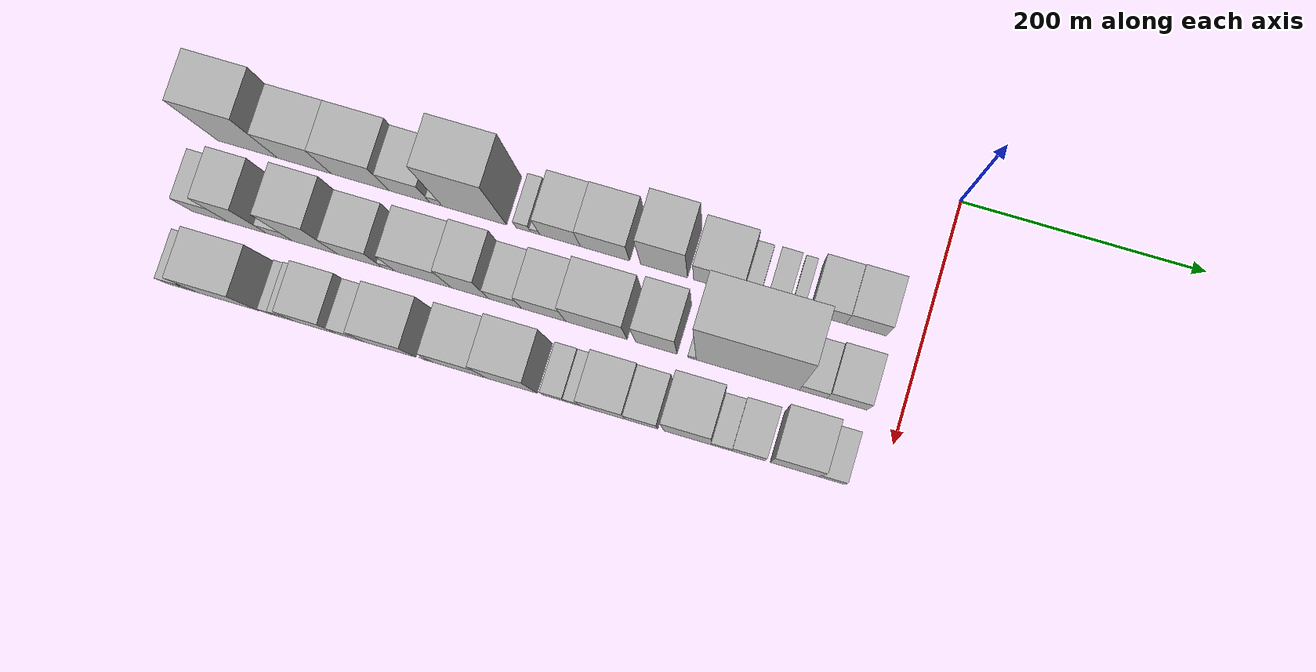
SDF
<sdf version="1.6">
 <world name="default">
  <model name="building_1">
   <static>1</static>
   <pose>100.0000 -554.9197 0 0.000000 0.000000 0.000000</pose>
   <link name="link">
    <pose>0 0 64.50 0 0 0</pose>
    <collision name="collision"><geometry><box><size>40.0000 50.1606 129.0000</size></box></geometry></collision>
    <visual name="visual">
     <cast_shadows>0</cast_shadows>
     <geometry><box><size>40.0000 50.1606 129.0000</size></box></geometry>
     <material>
      <script>
       <uri>model://HANNAS_wall/materials/scripts</uri>
       <uri>model://HANNAS_wall/materials/textures</uri>
       <name>vrc/HANNAS_wall</name>
      </script>
     </material>
    </visual>
   </link>
  </model>
  <model name="building_2">
   <static>1</static>
   <pose>100.0000 -507.3606 0 0.000000 0.000000 0.000000</pose>
   <link name="link">
    <pose>0 0 42.00 0 0 0</pose>
    <collision name="collision"><geometry><box><size>40.0000 44.9576 84.0000</size></box></geometry></collision>
    <visual name="visual">
     <cast_shadows>0</cast_shadows>
     <geometry><box><size>40.0000 44.9576 84.0000</size></box></geometry>
     <material>
      <script>
       <uri>model://HANNAS_wall/materials/scripts</uri>
       <uri>model://HANNAS_wall/materials/textures</uri>
       <name>vrc/HANNAS_wall</name>
      </script>
     </material>
    </visual>
   </link>
  </model>
  <model name="building_3">
   <static>1</static>
   <pose>100.0000 -460.6821 0 0.000000 0.000000 0.000000</pose>
   <link name="link">
    <pose>0 0 42.00 0 0 0</pose>
    <collision name="collision"><geometry><box><size>40.0000 48.3995 84.0000</size></box></geometry></collision>
    <visual name="visual">
     <cast_shadows>0</cast_shadows>
     <geometry><box><size>40.0000 48.3995 84.0000</size></box></geometry>
     <material>
      <script>
       <uri>model://HANNAS_wall/materials/scripts</uri>
       <uri>model://HANNAS_wall/materials/textures</uri>
       <name>vrc/HANNAS_wall</name>
      </script>
     </material>
    </visual>
   </link>
  </model>
  <model name="building_4">
   <static>1</static>
   <pose>100.0000 -419.5346 0 0.000000 0.000000 0.000000</pose>
   <link name="link">
    <pose>0 0 31.50 0 0 0</pose>
    <collision name="collision"><geometry><box><size>40.0000 33.8955 63.0000</size></box></geometry></collision>
    <visual name="visual">
     <cast_shadows>0</cast_shadows>
     <geometry><box><size>40.0000 33.8955 63.0000</size></box></geometry>
     <material>
      <script>
       <uri>model://HANNAS_wall/materials/scripts</uri>
       <uri>model://HANNAS_wall/materials/textures</uri>
       <name>vrc/HANNAS_wall</name>
      </script>
     </material>
    </visual>
   </link>
  </model>
  <model name="building_5">
   <static>1</static>
   <pose>100.0000 -397.4745 0 0.000000 0.000000 0.000000</pose>
   <link name="link">
    <pose>0 0 12.00 0 0 0</pose>
    <collision name="collision"><geometry><box><size>40.0000 10.2246 24.0000</size></box></geometry></collision>
    <visual name="visual">
     <cast_shadows>0</cast_shadows>
     <geometry><box><size>40.0000 10.2246 24.0000</size></box></geometry>
     <material>
      <script>
       <uri>model://HANNAS_wall/materials/scripts</uri>
       <uri>model://HANNAS_wall/materials/textures</uri>
       <name>vrc/HANNAS_wall</name>
      </script>
     </material>
    </visual>
   </link>
  </model>
  <model name="building_6">
   <static>1</static>
   <pose>100.0000 -365.7914 0 0.000000 0.000000 0.000000</pose>
   <link name="link">
    <pose>0 0 75.00 0 0 0</pose>
    <collision name="collision"><geometry><box><size>40.0000 53.1416 150.0000</size></box></geometry></collision>
    <visual name="visual">
     <cast_shadows>0</cast_shadows>
     <geometry><box><size>40.0000 53.1416 150.0000</size></box></geometry>
     <material>
      <script>
       <uri>model://HANNAS_wall/materials/scripts</uri>
       <uri>model://HANNAS_wall/materials/textures</uri>
       <name>vrc/HANNAS_wall</name>
      </script>
     </material>
    </visual>
   </link>
  </model>
  <model name="building_7">
   <static>1</static>
   <pose>100.0000 -325.1883 0 0.000000 0.000000 0.000000</pose>
   <link name="link">
    <pose>0 0 13.50 0 0 0</pose>
    <collision name="collision"><geometry><box><size>40.0000 12.0646 27.0000</size></box></geometry></collision>
    <visual name="visual">
     <cast_shadows>0</cast_shadows>
     <geometry><box><size>40.0000 12.0646 27.0000</size></box></geometry>
     <material>
      <script>
       <uri>model://HANNAS_wall/materials/scripts</uri>
       <uri>model://HANNAS_wall/materials/textures</uri>
       <name>vrc/HANNAS_wall</name>
      </script>
     </material>
    </visual>
   </link>
  </model>
  <model name="building_8">
   <static>1</static>
   <pose>100.0000 -315.4075 0 0.000000 0.000000 0.000000</pose>
   <link name="link">
    <pose>0 0 7.50 0 0 0</pose>
    <collision name="collision"><geometry><box><size>40.0000 7.4971 15.0000</size></box></geometry></collision>
    <visual name="visual">
     <cast_shadows>0</cast_shadows>
     <geometry><box><size>40.0000 7.4971 15.0000</size></box></geometry>
     <material>
      <script>
       <uri>model://HANNAS_wall/materials/scripts</uri>
       <uri>model://HANNAS_wall/materials/textures</uri>
       <name>vrc/HANNAS_wall</name>
      </script>
     </material>
    </visual>
   </link>
  </model>
  <model name="building_9">
   <static>1</static>
   <pose>100.0000 -294.9238 0 0.000000 0.000000 0.000000</pose>
   <link name="link">
    <pose>0 0 33.00 0 0 0</pose>
    <collision name="collision"><geometry><box><size>40.0000 33.4705 66.0000</size></box></geometry></collision>
    <visual name="visual">
     <cast_shadows>0</cast_shadows>
     <geometry><box><size>40.0000 33.4705 66.0000</size></box></geometry>
     <material>
      <script>
       <uri>model://HANNAS_wall/materials/scripts</uri>
       <uri>model://HANNAS_wall/materials/textures</uri>
       <name>vrc/HANNAS_wall</name>
      </script>
     </material>
    </visual>
   </link>
  </model>
  <model name="building_10">
   <static>1</static>
   <pose>100.0000 -257.9560 0 0.000000 0.000000 0.000000</pose>
   <link name="link">
    <pose>0 0 34.50 0 0 0</pose>
    <collision name="collision"><geometry><box><size>40.0000 40.4650 69.0000</size></box></geometry></collision>
    <visual name="visual">
     <cast_shadows>0</cast_shadows>
     <geometry><box><size>40.0000 40.4650 69.0000</size></box></geometry>
     <material>
      <script>
       <uri>model://HANNAS_wall/materials/scripts</uri>
       <uri>model://HANNAS_wall/materials/textures</uri>
       <name>vrc/HANNAS_wall</name>
      </script>
     </material>
    </visual>
   </link>
  </model>
  <model name="building_11">
   <static>1</static>
   <pose>100.0000 -209.4737 0 0.000000 0.000000 0.000000</pose>
   <link name="link">
    <pose>0 0 57.00 0 0 0</pose>
    <collision name="collision"><geometry><box><size>40.0000 38.4995 114.0000</size></box></geometry></collision>
    <visual name="visual">
     <cast_shadows>0</cast_shadows>
     <geometry><box><size>40.0000 38.4995 114.0000</size></box></geometry>
     <material>
      <script>
       <uri>model://HANNAS_wall/materials/scripts</uri>
       <uri>model://HANNAS_wall/materials/textures</uri>
       <name>vrc/HANNAS_wall</name>
      </script>
     </material>
    </visual>
   </link>
  </model>
  <model name="building_12">
   <static>1</static>
   <pose>100.0000 -164.6965 0 0.000000 0.000000 0.000000</pose>
   <link name="link">
    <pose>0 0 37.50 0 0 0</pose>
    <collision name="collision"><geometry><box><size>40.0000 41.0549 75.0000</size></box></geometry></collision>
    <visual name="visual">
     <cast_shadows>0</cast_shadows>
     <geometry><box><size>40.0000 41.0549 75.0000</size></box></geometry>
     <material>
      <script>
       <uri>model://HANNAS_wall/materials/scripts</uri>
       <uri>model://HANNAS_wall/materials/textures</uri>
       <name>vrc/HANNAS_wall</name>
      </script>
     </material>
    </visual>
   </link>
  </model>
  <model name="building_13">
   <static>1</static>
   <pose>100.0000 -137.7292 0 0.000000 0.000000 0.000000</pose>
   <link name="link">
    <pose>0 0 13.50 0 0 0</pose>
    <collision name="collision"><geometry><box><size>40.0000 12.8798 27.0000</size></box></geometry></collision>
    <visual name="visual">
     <cast_shadows>0</cast_shadows>
     <geometry><box><size>40.0000 12.8798 27.0000</size></box></geometry>
     <material>
      <script>
       <uri>model://HANNAS_wall/materials/scripts</uri>
       <uri>model://HANNAS_wall/materials/textures</uri>
       <name>vrc/HANNAS_wall</name>
      </script>
     </material>
    </visual>
   </link>
  </model>
  <model name="building_14">
   <static>1</static>
   <pose>100.0000 -116.9414 0 0.000000 0.000000 0.000000</pose>
   <link name="link">
    <pose>0 0 15.00 0 0 0</pose>
    <collision name="collision"><geometry><box><size>40.0000 16.6959 30.0000</size></box></geometry></collision>
    <visual name="visual">
     <cast_shadows>0</cast_shadows>
     <geometry><box><size>40.0000 16.6959 30.0000</size></box></geometry>
     <material>
      <script>
       <uri>model://HANNAS_wall/materials/scripts</uri>
       <uri>model://HANNAS_wall/materials/textures</uri>
       <name>vrc/HANNAS_wall</name>
      </script>
     </material>
    </visual>
   </link>
  </model>
  <model name="building_15">
   <static>1</static>
   <pose>100.0000 -100.7595 0 0.000000 0.000000 0.000000</pose>
   <link name="link">
    <pose>0 0 12.00 0 0 0</pose>
    <collision name="collision"><geometry><box><size>40.0000 9.6678 24.0000</size></box></geometry></collision>
    <visual name="visual">
     <cast_shadows>0</cast_shadows>
     <geometry><box><size>40.0000 9.6678 24.0000</size></box></geometry>
     <material>
      <script>
       <uri>model://HANNAS_wall/materials/scripts</uri>
       <uri>model://HANNAS_wall/materials/textures</uri>
       <name>vrc/HANNAS_wall</name>
      </script>
     </material>
    </visual>
   </link>
  </model>
  <model name="building_16">
   <static>1</static>
   <pose>100.0000 -75.9965 0 0.000000 0.000000 0.000000</pose>
   <link name="link">
    <pose>0 0 28.50 0 0 0</pose>
    <collision name="collision"><geometry><box><size>40.0000 29.8584 57.0000</size></box></geometry></collision>
    <visual name="visual">
     <cast_shadows>0</cast_shadows>
     <geometry><box><size>40.0000 29.8584 57.0000</size></box></geometry>
     <material>
      <script>
       <uri>model://HANNAS_wall/materials/scripts</uri>
       <uri>model://HANNAS_wall/materials/textures</uri>
       <name>vrc/HANNAS_wall</name>
      </script>
     </material>
    </visual>
   </link>
  </model>
  <model name="building_17">
   <static>1</static>
   <pose>100.0000 -44.6055 0 0.000000 0.000000 0.000000</pose>
   <link name="link">
    <pose>0 0 30.00 0 0 0</pose>
    <collision name="collision"><geometry><box><size>40.0000 32.9234 60.0000</size></box></geometry></collision>
    <visual name="visual">
     <cast_shadows>0</cast_shadows>
     <geometry><box><size>40.0000 32.9234 60.0000</size></box></geometry>
     <material>
      <script>
       <uri>model://HANNAS_wall/materials/scripts</uri>
       <uri>model://HANNAS_wall/materials/textures</uri>
       <name>vrc/HANNAS_wall</name>
      </script>
     </material>
    </visual>
   </link>
  </model>
  <model name="building_34">
   <static>1</static>
   <pose>160.0000 -565.0322 0 0.000000 0.000000 0.000000</pose>
   <link name="link">
    <pose>0 0 28.50 0 0 0</pose>
    <collision name="collision"><geometry><box><size>40.0000 29.9356 57.0000</size></box></geometry></collision>
    <visual name="visual">
     <cast_shadows>0</cast_shadows>
     <geometry><box><size>40.0000 29.9356 57.0000</size></box></geometry>
     <material>
      <script>
       <uri>model://HANNAS_wall/materials/scripts</uri>
       <uri>model://HANNAS_wall/materials/textures</uri>
       <name>vrc/HANNAS_wall</name>
      </script>
     </material>
    </visual>
   </link>
  </model>
  <model name="building_35">
   <static>1</static>
   <pose>160.0000 -534.2902 0 0.000000 0.000000 0.000000</pose>
   <link name="link">
    <pose>0 0 51.00 0 0 0</pose>
    <collision name="collision"><geometry><box><size>40.0000 31.5484 102.0000</size></box></geometry></collision>
    <visual name="visual">
     <cast_shadows>0</cast_shadows>
     <geometry><box><size>40.0000 31.5484 102.0000</size></box></geometry>
     <material>
      <script>
       <uri>model://HANNAS_wall/materials/scripts</uri>
       <uri>model://HANNAS_wall/materials/textures</uri>
       <name>vrc/HANNAS_wall</name>
      </script>
     </material>
    </visual>
   </link>
  </model>
  <model name="building_36">
   <static>1</static>
   <pose>160.0000 -507.8089 0 0.000000 0.000000 0.000000</pose>
   <link name="link">
    <pose>0 0 19.50 0 0 0</pose>
    <collision name="collision"><geometry><box><size>40.0000 21.4141 39.0000</size></box></geometry></collision>
    <visual name="visual">
     <cast_shadows>0</cast_shadows>
     <geometry><box><size>40.0000 21.4141 39.0000</size></box></geometry>
     <material>
      <script>
       <uri>model://HANNAS_wall/materials/scripts</uri>
       <uri>model://HANNAS_wall/materials/textures</uri>
       <name>vrc/HANNAS_wall</name>
      </script>
     </material>
    </visual>
   </link>
  </model>
  <model name="building_37">
   <static>1</static>
   <pose>160.0000 -478.3179 0 0.000000 0.000000 0.000000</pose>
   <link name="link">
    <pose>0 0 58.50 0 0 0</pose>
    <collision name="collision"><geometry><box><size>40.0000 37.5679 117.0000</size></box></geometry></collision>
    <visual name="visual">
     <cast_shadows>0</cast_shadows>
     <geometry><box><size>40.0000 37.5679 117.0000</size></box></geometry>
     <material>
      <script>
       <uri>model://HANNAS_wall/materials/scripts</uri>
       <uri>model://HANNAS_wall/materials/textures</uri>
       <name>vrc/HANNAS_wall</name>
      </script>
     </material>
    </visual>
   </link>
  </model>
  <model name="building_38">
   <static>1</static>
   <pose>160.0000 -441.1975 0 0.000000 0.000000 0.000000</pose>
   <link name="link">
    <pose>0 0 34.50 0 0 0</pose>
    <collision name="collision"><geometry><box><size>40.0000 36.6729 69.0000</size></box></geometry></collision>
    <visual name="visual">
     <cast_shadows>0</cast_shadows>
     <geometry><box><size>40.0000 36.6729 69.0000</size></box></geometry>
     <material>
      <script>
       <uri>model://HANNAS_wall/materials/scripts</uri>
       <uri>model://HANNAS_wall/materials/textures</uri>
       <name>vrc/HANNAS_wall</name>
      </script>
     </material>
    </visual>
   </link>
  </model>
  <model name="building_39">
   <static>1</static>
   <pose>160.0000 -417.4249 0 0.000000 0.000000 0.000000</pose>
   <link name="link">
    <pose>0 0 12.00 0 0 0</pose>
    <collision name="collision"><geometry><box><size>40.0000 10.8723 24.0000</size></box></geometry></collision>
    <visual name="visual">
     <cast_shadows>0</cast_shadows>
     <geometry><box><size>40.0000 10.8723 24.0000</size></box></geometry>
     <material>
      <script>
       <uri>model://HANNAS_wall/materials/scripts</uri>
       <uri>model://HANNAS_wall/materials/textures</uri>
       <name>vrc/HANNAS_wall</name>
      </script>
     </material>
    </visual>
   </link>
  </model>
  <model name="building_40">
   <static>1</static>
   <pose>160.0000 -388.8291 0 0.000000 0.000000 0.000000</pose>
   <link name="link">
    <pose>0 0 39.00 0 0 0</pose>
    <collision name="collision"><geometry><box><size>40.0000 46.3194 78.0000</size></box></geometry></collision>
    <visual name="visual">
     <cast_shadows>0</cast_shadows>
     <geometry><box><size>40.0000 46.3194 78.0000</size></box></geometry>
     <material>
      <script>
       <uri>model://HANNAS_wall/materials/scripts</uri>
       <uri>model://HANNAS_wall/materials/textures</uri>
       <name>vrc/HANNAS_wall</name>
      </script>
     </material>
    </visual>
   </link>
  </model>
  <model name="building_41">
   <static>1</static>
   <pose>160.0000 -350.1899 0 0.000000 0.000000 0.000000</pose>
   <link name="link">
    <pose>0 0 46.50 0 0 0</pose>
    <collision name="collision"><geometry><box><size>40.0000 30.9590 93.0000</size></box></geometry></collision>
    <visual name="visual">
     <cast_shadows>0</cast_shadows>
     <geometry><box><size>40.0000 30.9590 93.0000</size></box></geometry>
     <material>
      <script>
       <uri>model://HANNAS_wall/materials/scripts</uri>
       <uri>model://HANNAS_wall/materials/textures</uri>
       <name>vrc/HANNAS_wall</name>
      </script>
     </material>
    </visual>
   </link>
  </model>
  <model name="building_42">
   <static>1</static>
   <pose>160.0000 -321.1643 0 0.000000 0.000000 0.000000</pose>
   <link name="link">
    <pose>0 0 24.00 0 0 0</pose>
    <collision name="collision"><geometry><box><size>40.0000 27.0924 48.0000</size></box></geometry></collision>
    <visual name="visual">
     <cast_shadows>0</cast_shadows>
     <geometry><box><size>40.0000 27.0924 48.0000</size></box></geometry>
     <material>
      <script>
       <uri>model://HANNAS_wall/materials/scripts</uri>
       <uri>model://HANNAS_wall/materials/textures</uri>
       <name>vrc/HANNAS_wall</name>
      </script>
     </material>
    </visual>
   </link>
  </model>
  <model name="building_43">
   <static>1</static>
   <pose>160.0000 -289.6347 0 0.000000 0.000000 0.000000</pose>
   <link name="link">
    <pose>0 0 33.00 0 0 0</pose>
    <collision name="collision"><geometry><box><size>40.0000 35.9667 66.0000</size></box></geometry></collision>
    <visual name="visual">
     <cast_shadows>0</cast_shadows>
     <geometry><box><size>40.0000 35.9667 66.0000</size></box></geometry>
     <material>
      <script>
       <uri>model://HANNAS_wall/materials/scripts</uri>
       <uri>model://HANNAS_wall/materials/textures</uri>
       <name>vrc/HANNAS_wall</name>
      </script>
     </material>
    </visual>
   </link>
  </model>
  <model name="building_44">
   <static>1</static>
   <pose>160.0000 -246.6314 0 0.000000 0.000000 0.000000</pose>
   <link name="link">
    <pose>0 0 43.50 0 0 0</pose>
    <collision name="collision"><geometry><box><size>40.0000 50.0400 87.0000</size></box></geometry></collision>
    <visual name="visual">
     <cast_shadows>0</cast_shadows>
     <geometry><box><size>40.0000 50.0400 87.0000</size></box></geometry>
     <material>
      <script>
       <uri>model://HANNAS_wall/materials/scripts</uri>
       <uri>model://HANNAS_wall/materials/textures</uri>
       <name>vrc/HANNAS_wall</name>
      </script>
     </material>
    </visual>
   </link>
  </model>
  <model name="building_45">
   <static>1</static>
   <pose>160.0000 -197.7745 0 0.000000 0.000000 0.000000</pose>
   <link name="link">
    <pose>0 0 48.00 0 0 0</pose>
    <collision name="collision"><geometry><box><size>40.0000 33.6738 96.0000</size></box></geometry></collision>
    <visual name="visual">
     <cast_shadows>0</cast_shadows>
     <geometry><box><size>40.0000 33.6738 96.0000</size></box></geometry>
     <material>
      <script>
       <uri>model://HANNAS_wall/materials/scripts</uri>
       <uri>model://HANNAS_wall/materials/textures</uri>
       <name>vrc/HANNAS_wall</name>
      </script>
     </material>
    </visual>
   </link>
  </model>
  <model name="building_46">
   <static>1</static>
   <pose>160.0000 -168.6464 0 0.000000 0.000000 0.000000</pose>
   <link name="link">
    <pose>0 0 7.50 0 0 0</pose>
    <collision name="collision"><geometry><box><size>40.0000 6.5823 15.0000</size></box></geometry></collision>
    <visual name="visual">
     <cast_shadows>0</cast_shadows>
     <geometry><box><size>40.0000 6.5823 15.0000</size></box></geometry>
     <material>
      <script>
       <uri>model://HANNAS_wall/materials/scripts</uri>
       <uri>model://HANNAS_wall/materials/textures</uri>
       <name>vrc/HANNAS_wall</name>
      </script>
     </material>
    </visual>
   </link>
  </model>
  <model name="building_47">
   <static>1</static>
   <pose>160.0000 -123.4953 0 0.000000 0.000000 0.000000</pose>
   <link name="link">
    <pose>0 0 111.00 0 0 0</pose>
    <collision name="collision"><geometry><box><size>40.0000 83.7198 222.0000</size></box></geometry></collision>
    <visual name="visual">
     <cast_shadows>0</cast_shadows>
     <geometry><box><size>40.0000 83.7198 222.0000</size></box></geometry>
     <material>
      <script>
       <uri>model://HANNAS_wall/materials/scripts</uri>
       <uri>model://HANNAS_wall/materials/textures</uri>
       <name>vrc/HANNAS_wall</name>
      </script>
     </material>
    </visual>
   </link>
  </model>
  <model name="building_48">
   <static>1</static>
   <pose>160.0000 -70.4176 0 0.000000 0.000000 0.000000</pose>
   <link name="link">
    <pose>0 0 21.00 0 0 0</pose>
    <collision name="collision"><geometry><box><size>40.0000 22.4357 42.0000</size></box></geometry></collision>
    <visual name="visual">
     <cast_shadows>0</cast_shadows>
     <geometry><box><size>40.0000 22.4357 42.0000</size></box></geometry>
     <material>
      <script>
       <uri>model://HANNAS_wall/materials/scripts</uri>
       <uri>model://HANNAS_wall/materials/textures</uri>
       <name>vrc/HANNAS_wall</name>
      </script>
     </material>
    </visual>
   </link>
  </model>
  <model name="building_49">
   <static>1</static>
   <pose>160.0000 -43.1388 0 0.000000 0.000000 0.000000</pose>
   <link name="link">
    <pose>0 0 27.00 0 0 0</pose>
    <collision name="collision"><geometry><box><size>40.0000 32.1218 54.0000</size></box></geometry></collision>
    <visual name="visual">
     <cast_shadows>0</cast_shadows>
     <geometry><box><size>40.0000 32.1218 54.0000</size></box></geometry>
     <material>
      <script>
       <uri>model://HANNAS_wall/materials/scripts</uri>
       <uri>model://HANNAS_wall/materials/textures</uri>
       <name>vrc/HANNAS_wall</name>
      </script>
     </material>
    </visual>
   </link>
  </model>
  <model name="building_66">
   <static>1</static>
   <pose>220.0000 -571.3705 0 0.000000 0.000000 0.000000</pose>
   <link name="link">
    <pose>0 0 16.50 0 0 0</pose>
    <collision name="collision"><geometry><box><size>40.0000 17.2591 33.0000</size></box></geometry></collision>
    <visual name="visual">
     <cast_shadows>0</cast_shadows>
     <geometry><box><size>40.0000 17.2591 33.0000</size></box></geometry>
     <material>
      <script>
       <uri>model://HANNAS_wall/materials/scripts</uri>
       <uri>model://HANNAS_wall/materials/textures</uri>
       <name>vrc/HANNAS_wall</name>
      </script>
     </material>
    </visual>
   </link>
  </model>
  <model name="building_67">
   <static>1</static>
   <pose>220.0000 -558.2715 0 0.000000 0.000000 0.000000</pose>
   <link name="link">
    <pose>0 0 10.50 0 0 0</pose>
    <collision name="collision"><geometry><box><size>40.0000 8.9389 21.0000</size></box></geometry></collision>
    <visual name="visual">
     <cast_shadows>0</cast_shadows>
     <geometry><box><size>40.0000 8.9389 21.0000</size></box></geometry>
     <material>
      <script>
       <uri>model://HANNAS_wall/materials/scripts</uri>
       <uri>model://HANNAS_wall/materials/textures</uri>
       <name>vrc/HANNAS_wall</name>
      </script>
     </material>
    </visual>
   </link>
  </model>
  <model name="building_68">
   <static>1</static>
   <pose>220.0000 -529.1917 0 0.000000 0.000000 0.000000</pose>
   <link name="link">
    <pose>0 0 43.50 0 0 0</pose>
    <collision name="collision"><geometry><box><size>40.0000 49.2208 87.0000</size></box></geometry></collision>
    <visual name="visual">
     <cast_shadows>0</cast_shadows>
     <geometry><box><size>40.0000 49.2208 87.0000</size></box></geometry>
     <material>
      <script>
       <uri>model://HANNAS_wall/materials/scripts</uri>
       <uri>model://HANNAS_wall/materials/textures</uri>
       <name>vrc/HANNAS_wall</name>
      </script>
     </material>
    </visual>
   </link>
  </model>
  <model name="building_69">
   <static>1</static>
   <pose>220.0000 -495.4653 0 0.000000 0.000000 0.000000</pose>
   <link name="link">
    <pose>0 0 10.50 0 0 0</pose>
    <collision name="collision"><geometry><box><size>40.0000 10.2321 21.0000</size></box></geometry></collision>
    <visual name="visual">
     <cast_shadows>0</cast_shadows>
     <geometry><box><size>40.0000 10.2321 21.0000</size></box></geometry>
     <material>
      <script>
       <uri>model://HANNAS_wall/materials/scripts</uri>
       <uri>model://HANNAS_wall/materials/textures</uri>
       <name>vrc/HANNAS_wall</name>
      </script>
     </material>
    </visual>
   </link>
  </model>
  <model name="building_70">
   <static>1</static>
   <pose>220.0000 -482.7217 0 0.000000 0.000000 0.000000</pose>
   <link name="link">
    <pose>0 0 15.00 0 0 0</pose>
    <collision name="collision"><geometry><box><size>40.0000 15.2550 30.0000</size></box></geometry></collision>
    <visual name="visual">
     <cast_shadows>0</cast_shadows>
     <geometry><box><size>40.0000 15.2550 30.0000</size></box></geometry>
     <material>
      <script>
       <uri>model://HANNAS_wall/materials/scripts</uri>
       <uri>model://HANNAS_wall/materials/textures</uri>
       <name>vrc/HANNAS_wall</name>
      </script>
     </material>
    </visual>
   </link>
  </model>
  <model name="building_71">
   <static>1</static>
   <pose>220.0000 -457.8454 0 0.000000 0.000000 0.000000</pose>
   <link name="link">
    <pose>0 0 33.00 0 0 0</pose>
    <collision name="collision"><geometry><box><size>40.0000 34.4976 66.0000</size></box></geometry></collision>
    <visual name="visual">
     <cast_shadows>0</cast_shadows>
     <geometry><box><size>40.0000 34.4976 66.0000</size></box></geometry>
     <material>
      <script>
       <uri>model://HANNAS_wall/materials/scripts</uri>
       <uri>model://HANNAS_wall/materials/textures</uri>
       <name>vrc/HANNAS_wall</name>
      </script>
     </material>
    </visual>
   </link>
  </model>
  <model name="building_72">
   <static>1</static>
   <pose>220.0000 -429.2064 0 0.000000 0.000000 0.000000</pose>
   <link name="link">
    <pose>0 0 19.50 0 0 0</pose>
    <collision name="collision"><geometry><box><size>40.0000 22.7805 39.0000</size></box></geometry></collision>
    <visual name="visual">
     <cast_shadows>0</cast_shadows>
     <geometry><box><size>40.0000 22.7805 39.0000</size></box></geometry>
     <material>
      <script>
       <uri>model://HANNAS_wall/materials/scripts</uri>
       <uri>model://HANNAS_wall/materials/textures</uri>
       <name>vrc/HANNAS_wall</name>
      </script>
     </material>
    </visual>
   </link>
  </model>
  <model name="building_73">
   <static>1</static>
   <pose>220.0000 -396.7446 0 0.000000 0.000000 0.000000</pose>
   <link name="link">
    <pose>0 0 36.00 0 0 0</pose>
    <collision name="collision"><geometry><box><size>40.0000 42.1431 72.0000</size></box></geometry></collision>
    <visual name="visual">
     <cast_shadows>0</cast_shadows>
     <geometry><box><size>40.0000 42.1431 72.0000</size></box></geometry>
     <material>
      <script>
       <uri>model://HANNAS_wall/materials/scripts</uri>
       <uri>model://HANNAS_wall/materials/textures</uri>
       <name>vrc/HANNAS_wall</name>
      </script>
     </material>
    </visual>
   </link>
  </model>
  <model name="building_74">
   <static>1</static>
   <pose>220.0000 -365.1820 0 0.000000 0.000000 0.000000</pose>
   <link name="link">
    <pose>0 0 9.00 0 0 0</pose>
    <collision name="collision"><geometry><box><size>40.0000 8.9821 18.0000</size></box></geometry></collision>
    <visual name="visual">
     <cast_shadows>0</cast_shadows>
     <geometry><box><size>40.0000 8.9821 18.0000</size></box></geometry>
     <material>
      <script>
       <uri>model://HANNAS_wall/materials/scripts</uri>
       <uri>model://HANNAS_wall/materials/textures</uri>
       <name>vrc/HANNAS_wall</name>
      </script>
     </material>
    </visual>
   </link>
  </model>
  <model name="building_75">
   <static>1</static>
   <pose>220.0000 -339.0621 0 0.000000 0.000000 0.000000</pose>
   <link name="link">
    <pose>0 0 37.50 0 0 0</pose>
    <collision name="collision"><geometry><box><size>40.0000 43.2577 75.0000</size></box></geometry></collision>
    <visual name="visual">
     <cast_shadows>0</cast_shadows>
     <geometry><box><size>40.0000 43.2577 75.0000</size></box></geometry>
     <material>
      <script>
       <uri>model://HANNAS_wall/materials/scripts</uri>
       <uri>model://HANNAS_wall/materials/textures</uri>
       <name>vrc/HANNAS_wall</name>
      </script>
     </material>
    </visual>
   </link>
  </model>
  <model name="building_76">
   <static>1</static>
   <pose>220.0000 -296.9367 0 0.000000 0.000000 0.000000</pose>
   <link name="link">
    <pose>0 0 54.00 0 0 0</pose>
    <collision name="collision"><geometry><box><size>40.0000 40.9932 108.0000</size></box></geometry></collision>
    <visual name="visual">
     <cast_shadows>0</cast_shadows>
     <geometry><box><size>40.0000 40.9932 108.0000</size></box></geometry>
     <material>
      <script>
       <uri>model://HANNAS_wall/materials/scripts</uri>
       <uri>model://HANNAS_wall/materials/textures</uri>
       <name>vrc/HANNAS_wall</name>
      </script>
     </material>
    </visual>
   </link>
  </model>
  <model name="building_77">
   <static>1</static>
   <pose>220.0000 -262.5602 0 0.000000 0.000000 0.000000</pose>
   <link name="link">
    <pose>0 0 16.50 0 0 0</pose>
    <collision name="collision"><geometry><box><size>40.0000 17.7599 33.0000</size></box></geometry></collision>
    <visual name="visual">
     <cast_shadows>0</cast_shadows>
     <geometry><box><size>40.0000 17.7599 33.0000</size></box></geometry>
     <material>
      <script>
       <uri>model://HANNAS_wall/materials/scripts</uri>
       <uri>model://HANNAS_wall/materials/textures</uri>
       <name>vrc/HANNAS_wall</name>
      </script>
     </material>
    </visual>
   </link>
  </model>
  <model name="building_78">
   <static>1</static>
   <pose>220.0000 -247.3871 0 0.000000 0.000000 0.000000</pose>
   <link name="link">
    <pose>0 0 13.50 0 0 0</pose>
    <collision name="collision"><geometry><box><size>40.0000 12.5864 27.0000</size></box></geometry></collision>
    <visual name="visual">
     <cast_shadows>0</cast_shadows>
     <geometry><box><size>40.0000 12.5864 27.0000</size></box></geometry>
     <material>
      <script>
       <uri>model://HANNAS_wall/materials/scripts</uri>
       <uri>model://HANNAS_wall/materials/textures</uri>
       <name>vrc/HANNAS_wall</name>
      </script>
     </material>
    </visual>
   </link>
  </model>
  <model name="building_79">
   <static>1</static>
   <pose>220.0000 -222.8939 0 0.000000 0.000000 0.000000</pose>
   <link name="link">
    <pose>0 0 31.50 0 0 0</pose>
    <collision name="collision"><geometry><box><size>40.0000 36.4000 63.0000</size></box></geometry></collision>
    <visual name="visual">
     <cast_shadows>0</cast_shadows>
     <geometry><box><size>40.0000 36.4000 63.0000</size></box></geometry>
     <material>
      <script>
       <uri>model://HANNAS_wall/materials/scripts</uri>
       <uri>model://HANNAS_wall/materials/textures</uri>
       <name>vrc/HANNAS_wall</name>
      </script>
     </material>
    </visual>
   </link>
  </model>
  <model name="building_80">
   <static>1</static>
   <pose>220.0000 -191.5783 0 0.000000 0.000000 0.000000</pose>
   <link name="link">
    <pose>0 0 25.50 0 0 0</pose>
    <collision name="collision"><geometry><box><size>40.0000 26.2310 51.0000</size></box></geometry></collision>
    <visual name="visual">
     <cast_shadows>0</cast_shadows>
     <geometry><box><size>40.0000 26.2310 51.0000</size></box></geometry>
     <material>
      <script>
       <uri>model://HANNAS_wall/materials/scripts</uri>
       <uri>model://HANNAS_wall/materials/textures</uri>
       <name>vrc/HANNAS_wall</name>
      </script>
     </material>
    </visual>
   </link>
  </model>
  <model name="building_81">
   <static>1</static>
   <pose>220.0000 -154.4462 0 0.000000 0.000000 0.000000</pose>
   <link name="link">
    <pose>0 0 55.50 0 0 0</pose>
    <collision name="collision"><geometry><box><size>40.0000 38.0332 111.0000</size></box></geometry></collision>
    <visual name="visual">
     <cast_shadows>0</cast_shadows>
     <geometry><box><size>40.0000 38.0332 111.0000</size></box></geometry>
     <material>
      <script>
       <uri>model://HANNAS_wall/materials/scripts</uri>
       <uri>model://HANNAS_wall/materials/textures</uri>
       <name>vrc/HANNAS_wall</name>
      </script>
     </material>
    </visual>
   </link>
  </model>
  <model name="building_82">
   <static>1</static>
   <pose>220.0000 -127.0766 0 0.000000 0.000000 0.000000</pose>
   <link name="link">
    <pose>0 0 15.00 0 0 0</pose>
    <collision name="collision"><geometry><box><size>40.0000 16.7060 30.0000</size></box></geometry></collision>
    <visual name="visual">
     <cast_shadows>0</cast_shadows>
     <geometry><box><size>40.0000 16.7060 30.0000</size></box></geometry>
     <material>
      <script>
       <uri>model://HANNAS_wall/materials/scripts</uri>
       <uri>model://HANNAS_wall/materials/textures</uri>
       <name>vrc/HANNAS_wall</name>
      </script>
     </material>
    </visual>
   </link>
  </model>
  <model name="building_83">
   <static>1</static>
   <pose>220.0000 -105.3448 0 0.000000 0.000000 0.000000</pose>
   <link name="link">
    <pose>0 0 25.50 0 0 0</pose>
    <collision name="collision"><geometry><box><size>40.0000 26.7577 51.0000</size></box></geometry></collision>
    <visual name="visual">
     <cast_shadows>0</cast_shadows>
     <geometry><box><size>40.0000 26.7577 51.0000</size></box></geometry>
     <material>
      <script>
       <uri>model://HANNAS_wall/materials/scripts</uri>
       <uri>model://HANNAS_wall/materials/textures</uri>
       <name>vrc/HANNAS_wall</name>
      </script>
     </material>
    </visual>
   </link>
  </model>
  <model name="building_84">
   <static>1</static>
   <pose>220.0000 -68.6483 0 0.000000 0.000000 0.000000</pose>
   <link name="link">
    <pose>0 0 54.00 0 0 0</pose>
    <collision name="collision"><geometry><box><size>40.0000 38.6355 108.0000</size></box></geometry></collision>
    <visual name="visual">
     <cast_shadows>0</cast_shadows>
     <geometry><box><size>40.0000 38.6355 108.0000</size></box></geometry>
     <material>
      <script>
       <uri>model://HANNAS_wall/materials/scripts</uri>
       <uri>model://HANNAS_wall/materials/textures</uri>
       <name>vrc/HANNAS_wall</name>
      </script>
     </material>
    </visual>
   </link>
  </model>
  <model name="building_85">
   <static>1</static>
   <pose>220.0000 -38.8933 0 0.000000 0.000000 0.000000</pose>
   <link name="link">
    <pose>0 0 19.50 0 0 0</pose>
    <collision name="collision"><geometry><box><size>40.0000 20.8744 39.0000</size></box></geometry></collision>
    <visual name="visual">
     <cast_shadows>0</cast_shadows>
     <geometry><box><size>40.0000 20.8744 39.0000</size></box></geometry>
     <material>
      <script>
       <uri>model://HANNAS_wall/materials/scripts</uri>
       <uri>model://HANNAS_wall/materials/textures</uri>
       <name>vrc/HANNAS_wall</name>
      </script>
     </material>
    </visual>
   </link>
  </model>
 </world>
</sdf>
